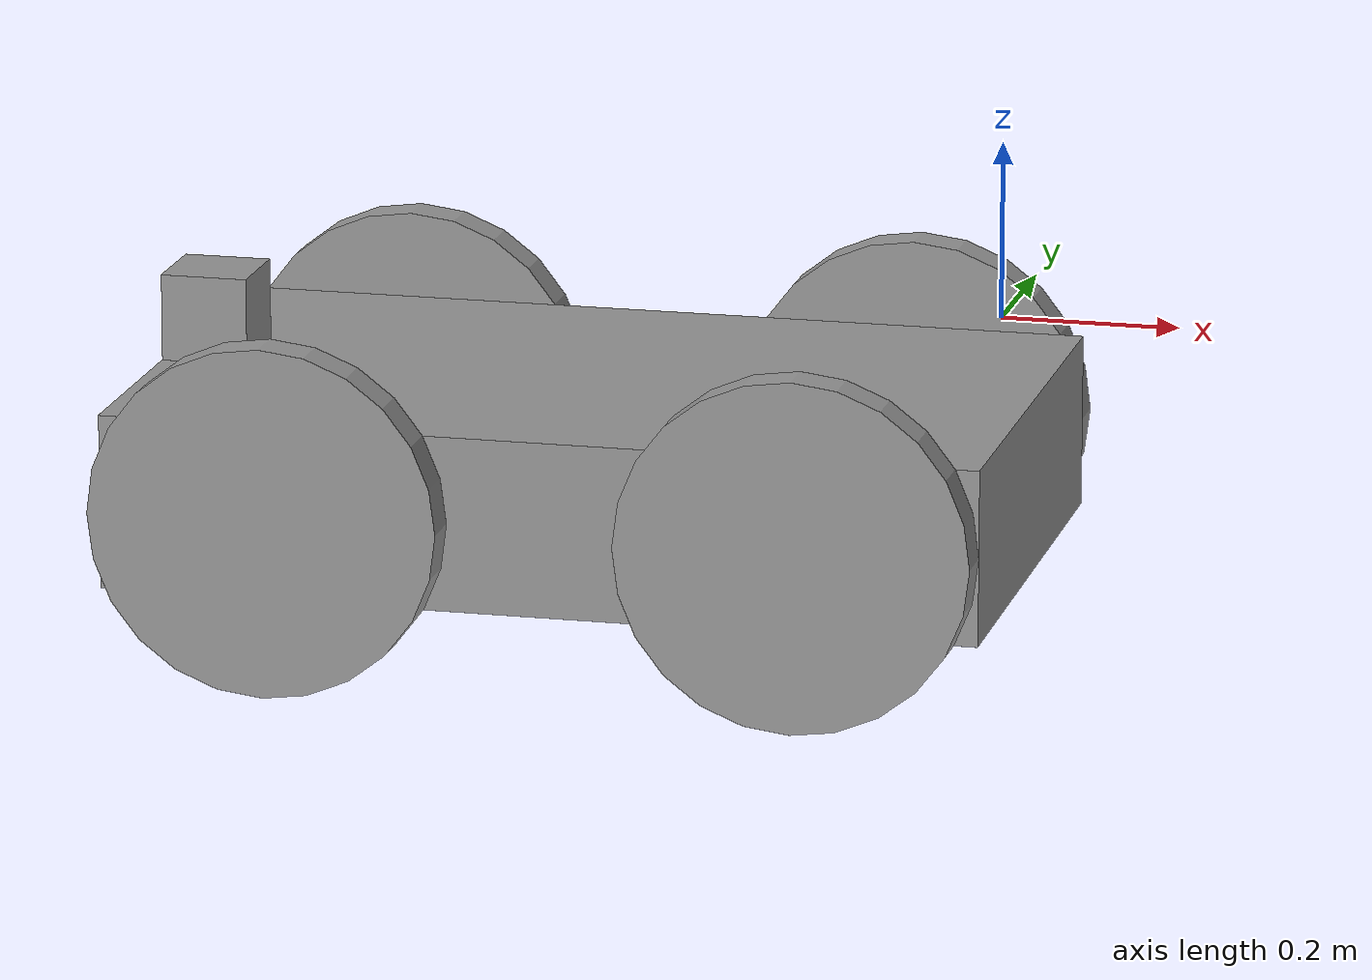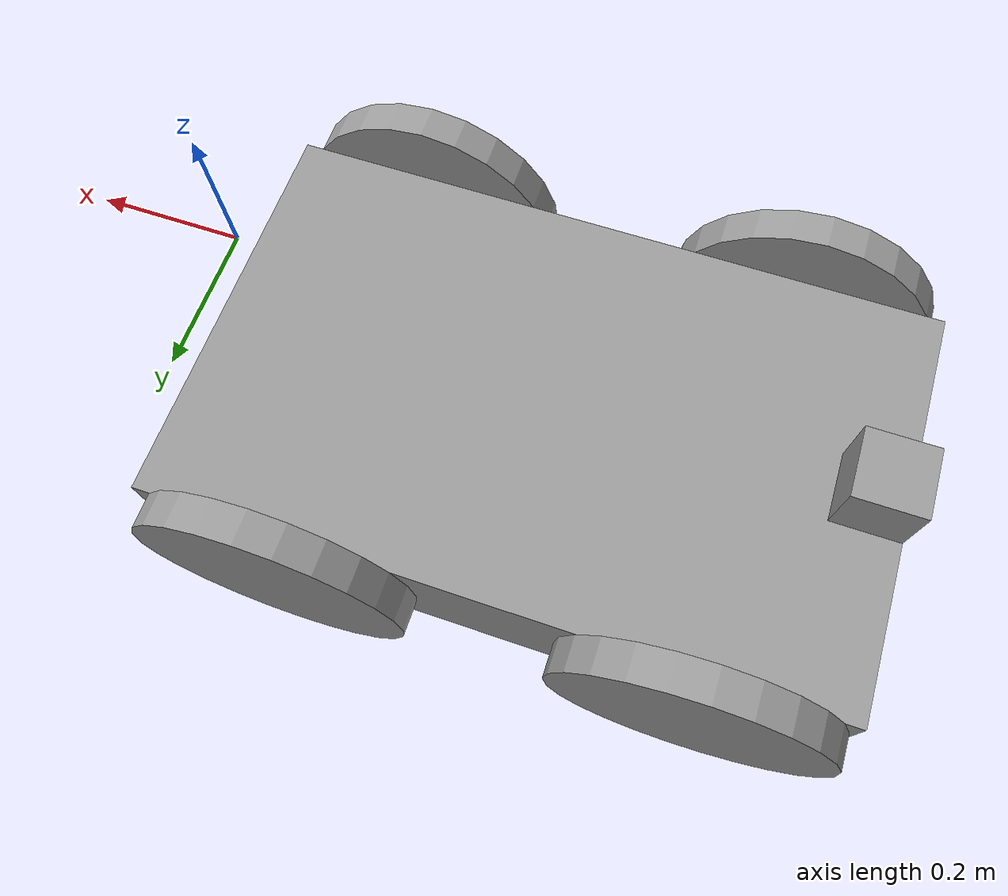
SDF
<?xml version='1.0'?>
<sdf version='1.7'>
  <model name='nomeer_model'>
    <link name='link_2'>
      <inertial>
        <mass>1</mass>
        <inertia>
          <ixx>0.166667</ixx>
          <ixy>0</ixy>
          <ixz>0</ixz>
          <iyy>0.166667</iyy>
          <iyz>0</iyz>
          <izz>0.166667</izz>
        </inertia>
        <pose>0 0 0 0 -0 0</pose>
      </inertial>
      <pose>-0.473319 0.050453 -0.208 0 -0 0</pose>
      <gravity>1</gravity>
      <self_collide>0</self_collide>
      <kinematic>0</kinematic>
      <enable_wind>0</enable_wind>
      <visual name='visual'>
        <pose>0 0 0 0 -0 0</pose>
        <geometry>
          <box>
            <size>1 0.6 0.2</size>
          </box>
        </geometry>
        <material>
          <lighting>1</lighting>
          <script>
            <uri>file://media/materials/scripts/gazebo.material</uri>
            <name>Gazebo/Grey</name>
          </script>
          <shader type='pixel'>
            <normal_map>__default__</normal_map>
          </shader>
          <ambient>0.3 0.3 0.3 1</ambient>
          <diffuse>0.7 0.7 0.7 1</diffuse>
          <specular>0.01 0.01 0.01 1</specular>
          <emissive>0 0 0 1</emissive>
        </material>
        <transparency>0</transparency>
        <cast_shadows>1</cast_shadows>
      </visual>
      <collision name='collision'>
        <laser_retro>0</laser_retro>
        <max_contacts>10</max_contacts>
        <pose>0 0 0 0 -0 0</pose>
        <geometry>
          <box>
            <size>1 0.6 0.2</size>
          </box>
        </geometry>
        <surface>
          <friction>
            <ode>
              <mu>1</mu>
              <mu2>1</mu2>
              <fdir1>0 0 0</fdir1>
              <slip1>0</slip1>
              <slip2>0</slip2>
            </ode>
            <torsional>
              <coefficient>1</coefficient>
              <patch_radius>0</patch_radius>
              <surface_radius>0</surface_radius>
              <use_patch_radius>1</use_patch_radius>
              <ode>
                <slip>0</slip>
              </ode>
            </torsional>
          </friction>
          <bounce>
            <restitution_coefficient>0</restitution_coefficient>
            <threshold>1e+06</threshold>
          </bounce>
          <contact>
            <collide_without_contact>0</collide_without_contact>
            <collide_without_contact_bitmask>1</collide_without_contact_bitmask>
            <collide_bitmask>1</collide_bitmask>
            <ode>
              <soft_cfm>0</soft_cfm>
              <soft_erp>0.2</soft_erp>
              <kp>1e+13</kp>
              <kd>1</kd>
              <max_vel>0.01</max_vel>
              <min_depth>0</min_depth>
            </ode>
            <bullet>
              <split_impulse>1</split_impulse>
              <split_impulse_penetration_threshold>-0.01</split_impulse_penetration_threshold>
              <soft_cfm>0</soft_cfm>
              <soft_erp>0.2</soft_erp>
              <kp>1e+13</kp>
              <kd>1</kd>
            </bullet>
          </contact>
        </surface>
      </collision>
    </link>
    <link name='link_4'>
      <inertial>
        <mass>1</mass>
        <inertia>
          <ixx>0.145833</ixx>
          <ixy>0</ixy>
          <ixz>0</ixz>
          <iyy>0.145833</iyy>
          <iyz>0</iyz>
          <izz>0.125</izz>
        </inertia>
        <pose>0 0 0 0 -0 0</pose>
      </inertial>
      <pose>-0.773319 0.375454 -0.208 0 -0 0</pose>
      <gravity>1</gravity>
      <self_collide>0</self_collide>
      <kinematic>0</kinematic>
      <enable_wind>0</enable_wind>
      <visual name='visual'>
        <pose>0 0 0 1.5708 -0 0</pose>
        <geometry>
          <cylinder>
            <radius>0.2</radius>
            <length>0.05</length>
          </cylinder>
        </geometry>
        <material>
          <lighting>1</lighting>
          <script>
            <uri>file://media/materials/scripts/gazebo.material</uri>
            <name>Gazebo/Grey</name>
          </script>
          <shader type='pixel'>
            <normal_map>__default__</normal_map>
          </shader>
          <ambient>0.3 0.3 0.3 1</ambient>
          <diffuse>0.7 0.7 0.7 1</diffuse>
          <specular>0.01 0.01 0.01 1</specular>
          <emissive>0 0 0 1</emissive>
        </material>
        <transparency>0</transparency>
        <cast_shadows>1</cast_shadows>
      </visual>
      <collision name='collision'>
        <laser_retro>0</laser_retro>
        <max_contacts>10</max_contacts>
        <pose>0 0 0 0 -0 0</pose>
        <geometry>
          <cylinder>
            <radius>0.2</radius>
            <length>0.05</length>
          </cylinder>
        </geometry>
        <surface>
          <friction>
            <ode>
              <mu>1</mu>
              <mu2>1</mu2>
              <fdir1>0 0 0</fdir1>
              <slip1>0</slip1>
              <slip2>0</slip2>
            </ode>
            <torsional>
              <coefficient>1</coefficient>
              <patch_radius>0</patch_radius>
              <surface_radius>0</surface_radius>
              <use_patch_radius>1</use_patch_radius>
              <ode>
                <slip>0</slip>
              </ode>
            </torsional>
          </friction>
          <bounce>
            <restitution_coefficient>0</restitution_coefficient>
            <threshold>1e+06</threshold>
          </bounce>
          <contact>
            <collide_without_contact>0</collide_without_contact>
            <collide_without_contact_bitmask>1</collide_without_contact_bitmask>
            <collide_bitmask>1</collide_bitmask>
            <ode>
              <soft_cfm>0</soft_cfm>
              <soft_erp>0.2</soft_erp>
              <kp>1e+13</kp>
              <kd>1</kd>
              <max_vel>0.01</max_vel>
              <min_depth>0</min_depth>
            </ode>
            <bullet>
              <split_impulse>1</split_impulse>
              <split_impulse_penetration_threshold>-0.01</split_impulse_penetration_threshold>
              <soft_cfm>0</soft_cfm>
              <soft_erp>0.2</soft_erp>
              <kp>1e+13</kp>
              <kd>1</kd>
            </bullet>
          </contact>
        </surface>
      </collision>
    </link>
    <link name='link_4_clone'>
      <inertial>
        <mass>1</mass>
        <inertia>
          <ixx>0.145833</ixx>
          <ixy>0</ixy>
          <ixz>0</ixz>
          <iyy>0.145833</iyy>
          <iyz>0</iyz>
          <izz>0.125</izz>
        </inertia>
        <pose>0 0 0 0 -0 0</pose>
      </inertial>
      <pose>-0.173319 -0.274548 -0.208 0 -0 0</pose>
      <gravity>1</gravity>
      <self_collide>0</self_collide>
      <kinematic>0</kinematic>
      <enable_wind>0</enable_wind>
      <visual name='visual'>
        <pose>0 0 0 1.5708 -0 0</pose>
        <geometry>
          <cylinder>
            <radius>0.2</radius>
            <length>0.05</length>
          </cylinder>
        </geometry>
        <material>
          <lighting>1</lighting>
          <script>
            <uri>file://media/materials/scripts/gazebo.material</uri>
            <name>Gazebo/Grey</name>
          </script>
          <shader type='pixel'>
            <normal_map>__default__</normal_map>
          </shader>
          <ambient>0.3 0.3 0.3 1</ambient>
          <diffuse>0.7 0.7 0.7 1</diffuse>
          <specular>0.01 0.01 0.01 1</specular>
          <emissive>0 0 0 1</emissive>
        </material>
        <transparency>0</transparency>
        <cast_shadows>1</cast_shadows>
      </visual>
      <collision name='collision'>
        <laser_retro>0</laser_retro>
        <max_contacts>10</max_contacts>
        <pose>0 0 0 0 -0 0</pose>
        <geometry>
          <cylinder>
            <radius>0.2</radius>
            <length>0.05</length>
          </cylinder>
        </geometry>
        <surface>
          <friction>
            <ode>
              <mu>1</mu>
              <mu2>1</mu2>
              <fdir1>0 0 0</fdir1>
              <slip1>0</slip1>
              <slip2>0</slip2>
            </ode>
            <torsional>
              <coefficient>1</coefficient>
              <patch_radius>0</patch_radius>
              <surface_radius>0</surface_radius>
              <use_patch_radius>1</use_patch_radius>
              <ode>
                <slip>0</slip>
              </ode>
            </torsional>
          </friction>
          <bounce>
            <restitution_coefficient>0</restitution_coefficient>
            <threshold>1e+06</threshold>
          </bounce>
          <contact>
            <collide_without_contact>0</collide_without_contact>
            <collide_without_contact_bitmask>1</collide_without_contact_bitmask>
            <collide_bitmask>1</collide_bitmask>
            <ode>
              <soft_cfm>0</soft_cfm>
              <soft_erp>0.2</soft_erp>
              <kp>1e+13</kp>
              <kd>1</kd>
              <max_vel>0.01</max_vel>
              <min_depth>0</min_depth>
            </ode>
            <bullet>
              <split_impulse>1</split_impulse>
              <split_impulse_penetration_threshold>-0.01</split_impulse_penetration_threshold>
              <soft_cfm>0</soft_cfm>
              <soft_erp>0.2</soft_erp>
              <kp>1e+13</kp>
              <kd>1</kd>
            </bullet>
          </contact>
        </surface>
      </collision>
    </link>
    <link name='link_4_clone_0'>
      <inertial>
        <mass>1</mass>
        <inertia>
          <ixx>0.145833</ixx>
          <ixy>0</ixy>
          <ixz>0</ixz>
          <iyy>0.145833</iyy>
          <iyz>0</iyz>
          <izz>0.125</izz>
        </inertia>
        <pose>0 0 0 0 -0 0</pose>
      </inertial>
      <pose>-0.173319 0.375454 -0.208 0 -0 0</pose>
      <gravity>1</gravity>
      <self_collide>0</self_collide>
      <kinematic>0</kinematic>
      <enable_wind>0</enable_wind>
      <visual name='visual'>
        <pose>0 0 0 1.5708 -0 0</pose>
        <geometry>
          <cylinder>
            <radius>0.2</radius>
            <length>0.05</length>
          </cylinder>
        </geometry>
        <material>
          <lighting>1</lighting>
          <script>
            <uri>file://media/materials/scripts/gazebo.material</uri>
            <name>Gazebo/Grey</name>
          </script>
          <shader type='pixel'>
            <normal_map>__default__</normal_map>
          </shader>
          <ambient>0.3 0.3 0.3 1</ambient>
          <diffuse>0.7 0.7 0.7 1</diffuse>
          <specular>0.01 0.01 0.01 1</specular>
          <emissive>0 0 0 1</emissive>
        </material>
        <transparency>0</transparency>
        <cast_shadows>1</cast_shadows>
      </visual>
      <collision name='collision'>
        <laser_retro>0</laser_retro>
        <max_contacts>10</max_contacts>
        <pose>0 0 0 0 -0 0</pose>
        <geometry>
          <cylinder>
            <radius>0.2</radius>
            <length>0.05</length>
          </cylinder>
        </geometry>
        <surface>
          <friction>
            <ode>
              <mu>1</mu>
              <mu2>1</mu2>
              <fdir1>0 0 0</fdir1>
              <slip1>0</slip1>
              <slip2>0</slip2>
            </ode>
            <torsional>
              <coefficient>1</coefficient>
              <patch_radius>0</patch_radius>
              <surface_radius>0</surface_radius>
              <use_patch_radius>1</use_patch_radius>
              <ode>
                <slip>0</slip>
              </ode>
            </torsional>
          </friction>
          <bounce>
            <restitution_coefficient>0</restitution_coefficient>
            <threshold>1e+06</threshold>
          </bounce>
          <contact>
            <collide_without_contact>0</collide_without_contact>
            <collide_without_contact_bitmask>1</collide_without_contact_bitmask>
            <collide_bitmask>1</collide_bitmask>
            <ode>
              <soft_cfm>0</soft_cfm>
              <soft_erp>0.2</soft_erp>
              <kp>1e+13</kp>
              <kd>1</kd>
              <max_vel>0.01</max_vel>
              <min_depth>0</min_depth>
            </ode>
            <bullet>
              <split_impulse>1</split_impulse>
              <split_impulse_penetration_threshold>-0.01</split_impulse_penetration_threshold>
              <soft_cfm>0</soft_cfm>
              <soft_erp>0.2</soft_erp>
              <kp>1e+13</kp>
              <kd>1</kd>
            </bullet>
          </contact>
        </surface>
      </collision>
    </link>
    <link name='link_4_clone_1'>
      <inertial>
        <mass>1</mass>
        <inertia>
          <ixx>0.145833</ixx>
          <ixy>0</ixy>
          <ixz>0</ixz>
          <iyy>0.145833</iyy>
          <iyz>0</iyz>
          <izz>0.125</izz>
        </inertia>
        <pose>0 0 0 0 -0 0</pose>
      </inertial>
      <pose>-0.773319 -0.274548 -0.208 0 -0 0</pose>
      <gravity>1</gravity>
      <self_collide>0</self_collide>
      <kinematic>0</kinematic>
      <enable_wind>0</enable_wind>
      <visual name='visual'>
        <pose>0 0 0 1.5708 -0 0</pose>
        <geometry>
          <cylinder>
            <radius>0.2</radius>
            <length>0.05</length>
          </cylinder>
        </geometry>
        <material>
          <lighting>1</lighting>
          <script>
            <uri>file://media/materials/scripts/gazebo.material</uri>
            <name>Gazebo/Grey</name>
          </script>
          <shader type='pixel'>
            <normal_map>__default__</normal_map>
          </shader>
          <ambient>0.3 0.3 0.3 1</ambient>
          <diffuse>0.7 0.7 0.7 1</diffuse>
          <specular>0.01 0.01 0.01 1</specular>
          <emissive>0 0 0 1</emissive>
        </material>
        <transparency>0</transparency>
        <cast_shadows>1</cast_shadows>
      </visual>
      <collision name='collision'>
        <laser_retro>0</laser_retro>
        <max_contacts>10</max_contacts>
        <pose>0 0 0 0 -0 0</pose>
        <geometry>
          <cylinder>
            <radius>0.2</radius>
            <length>0.05</length>
          </cylinder>
        </geometry>
        <surface>
          <friction>
            <ode>
              <mu>1</mu>
              <mu2>1</mu2>
              <fdir1>0 0 0</fdir1>
              <slip1>0</slip1>
              <slip2>0</slip2>
            </ode>
            <torsional>
              <coefficient>1</coefficient>
              <patch_radius>0</patch_radius>
              <surface_radius>0</surface_radius>
              <use_patch_radius>1</use_patch_radius>
              <ode>
                <slip>0</slip>
              </ode>
            </torsional>
          </friction>
          <bounce>
            <restitution_coefficient>0</restitution_coefficient>
            <threshold>1e+06</threshold>
          </bounce>
          <contact>
            <collide_without_contact>0</collide_without_contact>
            <collide_without_contact_bitmask>1</collide_without_contact_bitmask>
            <collide_bitmask>1</collide_bitmask>
            <ode>
              <soft_cfm>0</soft_cfm>
              <soft_erp>0.2</soft_erp>
              <kp>1e+13</kp>
              <kd>1</kd>
              <max_vel>0.01</max_vel>
              <min_depth>0</min_depth>
            </ode>
            <bullet>
              <split_impulse>1</split_impulse>
              <split_impulse_penetration_threshold>-0.01</split_impulse_penetration_threshold>
              <soft_cfm>0</soft_cfm>
              <soft_erp>0.2</soft_erp>
              <kp>1e+13</kp>
              <kd>1</kd>
            </bullet>
          </contact>
        </surface>
      </collision>
    </link>
    <link name='link_5'>
      <inertial>
        <mass>1</mass>
        <inertia>
          <ixx>0.166667</ixx>
          <ixy>0</ixy>
          <ixz>0</ixz>
          <iyy>0.166667</iyy>
          <iyz>0</iyz>
          <izz>0.166667</izz>
        </inertia>
        <pose>0 0 0 0 -0 0</pose>
      </inertial>
      <pose>-0.923319 0.050453 -0.058 0 -0 0</pose>
      <gravity>1</gravity>
      <self_collide>0</self_collide>
      <kinematic>0</kinematic>
      <enable_wind>0</enable_wind>
      <visual name='visual'>
        <pose>0 0 0 0 -0 0</pose>
        <geometry>
          <box>
            <size>0.1 0.1 0.1</size>
          </box>
        </geometry>
        <material>
          <lighting>1</lighting>
          <script>
            <uri>file://media/materials/scripts/gazebo.material</uri>
            <name>Gazebo/Grey</name>
          </script>
          <shader type='pixel'>
            <normal_map>__default__</normal_map>
          </shader>
          <ambient>0.3 0.3 0.3 1</ambient>
          <diffuse>0.7 0.7 0.7 1</diffuse>
          <specular>0.01 0.01 0.01 1</specular>
          <emissive>0 0 0 1</emissive>
        </material>
        <transparency>0</transparency>
        <cast_shadows>1</cast_shadows>
      </visual>
      <collision name='collision'>
        <laser_retro>0</laser_retro>
        <max_contacts>10</max_contacts>
        <pose>0 0 0 0 -0 0</pose>
        <geometry>
          <box>
            <size>1 1 1</size>
          </box>
        </geometry>
        <surface>
          <friction>
            <ode>
              <mu>1</mu>
              <mu2>1</mu2>
              <fdir1>0 0 0</fdir1>
              <slip1>0</slip1>
              <slip2>0</slip2>
            </ode>
            <torsional>
              <coefficient>1</coefficient>
              <patch_radius>0</patch_radius>
              <surface_radius>0</surface_radius>
              <use_patch_radius>1</use_patch_radius>
              <ode>
                <slip>0</slip>
              </ode>
            </torsional>
          </friction>
          <bounce>
            <restitution_coefficient>0</restitution_coefficient>
            <threshold>1e+06</threshold>
          </bounce>
          <contact>
            <collide_without_contact>0</collide_without_contact>
            <collide_without_contact_bitmask>1</collide_without_contact_bitmask>
            <collide_bitmask>1</collide_bitmask>
            <ode>
              <soft_cfm>0</soft_cfm>
              <soft_erp>0.2</soft_erp>
              <kp>1e+13</kp>
              <kd>1</kd>
              <max_vel>0.01</max_vel>
              <min_depth>0</min_depth>
            </ode>
            <bullet>
              <split_impulse>1</split_impulse>
              <split_impulse_penetration_threshold>-0.01</split_impulse_penetration_threshold>
              <soft_cfm>0</soft_cfm>
              <soft_erp>0.2</soft_erp>
              <kp>1e+13</kp>
              <kd>1</kd>
            </bullet>
          </contact>
        </surface>
      </collision>
    </link>
    <joint name='link_2_JOINT_2' type='revolute'>
      <parent>link_2</parent>
      <child>link_4_clone_0</child>
      <pose>0 0 0 0 -0 0</pose>
      <axis>
        <xyz>0 1 0</xyz>
        <limit>
          <lower>-1.79769e+308</lower>
          <upper>1.79769e+308</upper>
          <effort>-1</effort>
          <velocity>-1</velocity>
        </limit>
        <dynamics>
          <spring_reference>0</spring_reference>
          <spring_stiffness>0</spring_stiffness>
          <damping>0</damping>
        </dynamics>
      </axis>
      <physics>
        <ode>
          <limit>
            <cfm>0</cfm>
            <erp>0.2</erp>
          </limit>
          <suspension>
            <cfm>0</cfm>
            <erp>0.2</erp>
          </suspension>
        </ode>
      </physics>
    </joint>
    <joint name='link_2_JOINT_3' type='revolute'>
      <parent>link_2</parent>
      <child>link_4_clone</child>
      <pose>0 0 0 0 -0 0</pose>
      <axis>
        <xyz>-0 -1 -0</xyz>
        <limit>
          <lower>-1.79769e+308</lower>
          <upper>1.79769e+308</upper>
          <effort>-1</effort>
          <velocity>-1</velocity>
        </limit>
        <dynamics>
          <spring_reference>0</spring_reference>
          <spring_stiffness>0</spring_stiffness>
          <damping>0</damping>
        </dynamics>
      </axis>
      <physics>
        <ode>
          <limit>
            <cfm>0</cfm>
            <erp>0.2</erp>
          </limit>
          <suspension>
            <cfm>0</cfm>
            <erp>0.2</erp>
          </suspension>
        </ode>
      </physics>
    </joint>
    <joint name='link_2_JOINT_5' type='revolute'>
      <parent>link_2</parent>
      <child>link_4</child>
      <pose>0 0 0 0 -0 0</pose>
      <axis>
        <xyz>0 1 0</xyz>
        <limit>
          <lower>-1.79769e+308</lower>
          <upper>1.79769e+308</upper>
          <effort>-1</effort>
          <velocity>-1</velocity>
        </limit>
        <dynamics>
          <spring_reference>0</spring_reference>
          <spring_stiffness>0</spring_stiffness>
          <damping>0</damping>
          <friction>0</friction>
        </dynamics>
      </axis>
      <physics>
        <ode>
          <limit>
            <cfm>0</cfm>
            <erp>0.2</erp>
          </limit>
          <suspension>
            <cfm>0</cfm>
            <erp>0.2</erp>
          </suspension>
        </ode>
      </physics>
    </joint>
    <joint name='link_2_JOINT_6' type='revolute'>
      <parent>link_2</parent>
      <child>link_4_clone_1</child>
      <pose>0 0 0 0 -0 0</pose>
      <axis>
        <xyz>-0 -1 -0</xyz>
        <limit>
          <lower>-1.79769e+308</lower>
          <upper>1.79769e+308</upper>
          <effort>-1</effort>
          <velocity>-1</velocity>
        </limit>
        <dynamics>
          <spring_reference>0</spring_reference>
          <spring_stiffness>0</spring_stiffness>
          <damping>0</damping>
        </dynamics>
      </axis>
      <physics>
        <ode>
          <limit>
            <cfm>0</cfm>
            <erp>0.2</erp>
          </limit>
          <suspension>
            <cfm>0</cfm>
            <erp>0.2</erp>
          </suspension>
        </ode>
      </physics>
    </joint>
    <joint name='link_2_JOINT_8' type='fixed'>
      <parent>link_2</parent>
      <child>link_5</child>
      <pose>0 0 0 0 -0 0</pose>
      <physics>
        <ode>
          <limit>
            <cfm>0</cfm>
            <erp>0.2</erp>
          </limit>
          <suspension>
            <cfm>0</cfm>
            <erp>0.2</erp>
          </suspension>
        </ode>
      </physics>
    </joint>
    <static>0</static>
    <allow_auto_disable>1</allow_auto_disable>
  </model>
</sdf>
